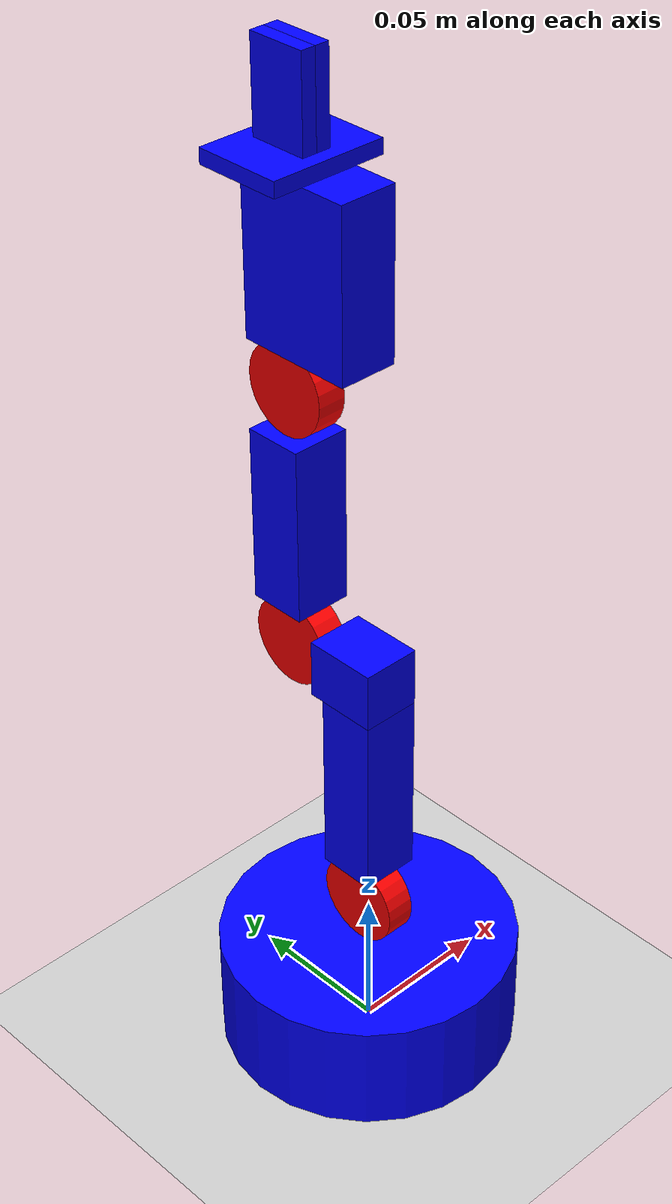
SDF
<?xml version="1.0" ?>
<sdf version="1.10">
    <world name="car_world">
        <physics name="1ms" type="ignored">
            <max_step_size>0.001</max_step_size>
            <real_time_factor>1.0</real_time_factor>
        </physics>
        <plugin
            filename="gz-sim-physics-system"
            name="gz::sim::systems::Physics">
        </plugin>
        <plugin
            filename="gz-sim-user-commands-system"
            name="gz::sim::systems::UserCommands">
        </plugin>
        <plugin
            filename="gz-sim-scene-broadcaster-system"
            name="gz::sim::systems::SceneBroadcaster">
        </plugin>

        <light type="directional" name="sun">
            <cast_shadows>true</cast_shadows>
            <pose>0 0 10 0 0 0</pose>
            <diffuse>0.8 0.8 0.8 1</diffuse>
            <specular>0.2 0.2 0.2 1</specular>
            <attenuation>
                <range>1000</range>
                <constant>0.9</constant>
                <linear>0.01</linear>
                <quadratic>0.001</quadratic>
            </attenuation>
            <direction>-0.5 0.1 -0.9</direction>
        </light>
        <model name="ground_plane">
            <static>true</static>
            <link name="link">
                <collision name="collision">
                <geometry>
                    <plane>
                    <normal>0 0 1</normal>
                    </plane>
                </geometry>
                </collision>
                <visual name="visual">
                <geometry>
                    <plane>
                    <normal>0 0 1</normal>
                    <size>100 100</size>
                    </plane>
                </geometry>
                <material>
                    <ambient>0.8 0.8 0.8 1</ambient>
                    <diffuse>0.8 0.8 0.8 1</diffuse>
                    <specular>0.8 0.8 0.8 1</specular>
                </material>
                </visual>
            </link>
        </model>
	<!--MODEL DESCRIPTION-->
	<model name='arm' canonical_link='plate'>
		<pose relative_to='world'>0 0 0 0 0 0</pose>
		<link name='plate'>
        		<pose relative_to='__model__'>0 0 0.020 0 0 0</pose>
			<visual name='visual'>
				<geometry>
				    <cylinder>
					<radius>0.05</radius>
					<length>0.04</length>
				    </cylinder>
				</geometry>
				<!--let's add color to our link-->
				<material>
				    <ambient>0.0 0.0 1.0 1</ambient>
				    <diffuse>0.0 0.0 1.0 1</diffuse>
				    <specular>0.0 0.0 1.0 1</specular>
				</material>
			</visual>
			<collision name='collision'>
			    <geometry>
				    <cylinder>
					<radius>0.05</radius>
					<length>0.04</length>
				    </cylinder>
			    </geometry>
			</collision>
		</link>

		<link name='plate_joint_1'>
        		<pose relative_to='plate'>0 0 0.035 1.570796 0 1.570796</pose>
			<visual name='visual'>
				<geometry>
				    <cylinder>
					<radius>0.015</radius>
					<length>0.01</length>
				    </cylinder>
				</geometry>
				<!--let's add color to our link-->
				<material>
				    <ambient>1.0 0.0 0.0 1</ambient>
				    <diffuse>1.0 0.0 0.0 1</diffuse>
				    <specular>1.0 0.0 0.0 1</specular>
				</material>
			</visual>
			<collision name='collision'>
			    <geometry>
				    <cylinder>
					<radius>0.015</radius>
					<length>0.01</length>
				    </cylinder>
			    </geometry>
			</collision>
		</link>

		<link name='bar1'>
        		<pose relative_to='joint1'>0 0.0475 0 0 0 0</pose>
			<visual name='visual'>
				<geometry>
				    <box>
					  <size>0.02 0.065 0.02</size>
				    </box>
				</geometry>
				<!--let's add color to our link-->
				<material>
				    <ambient>0.0 0.0 1.0 1</ambient>
				    <diffuse>0.0 0.0 1.0 1</diffuse>
				    <specular>0.0 0.0 1.0 1</specular>
				</material>
			</visual>
			<collision name='collision'>
			    <geometry>
				    <box>
					  <size>0.02 0.065 0.020</size>
				    </box>
			    </geometry>
			</collision>
		</link>
		<link name='bar1a'>
        		<pose relative_to='bar1'>0.0025 0.0425 0 0 0 0</pose>
			<visual name='visual'>
				<geometry>
				    <box>
					  <size>0.025 0.02 0.020</size>
				    </box>
				</geometry>
				<!--let's add color to our link-->
				<material>
				    <ambient>0.0 0.0 1.0 1</ambient>
				    <diffuse>0.0 0.0 1.0 1</diffuse>
				    <specular>0.0 0.0 1.0 1</specular>
				</material>
			</visual>
			<collision name='collision'>
			    <geometry>
				    <box>
					  <size>0.025 0.02 0.02</size>
				    </box>
			    </geometry>
			</collision>
		</link>

		<link name='plate_joint_2'>
        		<pose relative_to='bar1a'>0.0275 0 0 0 0 0</pose>
			<visual name='visual'>
				<geometry>
				    <cylinder>
					<radius>0.015</radius>
					<length>0.01</length>
				    </cylinder>
				</geometry>
				<!--let's add color to our link-->
				<material>
				    <ambient>1.0 0.0 0.0 1</ambient>
				    <diffuse>1.0 0.0 0.0 1</diffuse>
				    <specular>1.0 0.0 0.0 1</specular>
				</material>
			</visual>
			<collision name='collision'>
			    <geometry>
				    <cylinder>
					<radius>0.015</radius>
					<length>0.01</length>
				    </cylinder>
			    </geometry>
			</collision>
		</link>

		<link name='bar2'>
        		<pose relative_to='plate_joint_2'>0 0.045 0 0 0 0</pose>
			<visual name='visual'>
				<geometry>
				    <box>
					<size>0.02 0.060 0.02</size>
				    </box>
				</geometry>
				<!--let's add color to our link-->
				<material>
				    <ambient>0.0 0.0 1.0 1</ambient>
				    <diffuse>0.0 0.0 1.0 1</diffuse>
				    <specular>0.0 0.0 1.0 1</specular>
				</material>
			</visual>
			<collision name='collision'>
			    <geometry>
				    <box>
					<size>0.02 0.060 0.02</size>
				    </box>
			    </geometry>
			</collision>
		</link>

		<link name='plate_joint_3'>
        		<pose relative_to='bar2'>0 0.045 0 0 0 0</pose>
			<visual name='visual'>
				<geometry>
				    <cylinder>
					<radius>0.015</radius>
					<length>0.01</length>
				    </cylinder>
				</geometry>
				<!--let's add color to our link-->
				<material>
				    <ambient>1.0 0.0 0.0 1</ambient>
				    <diffuse>1.0 0.0 0.0 1</diffuse>
				    <specular>1.0 0.0 0.0 1</specular>
				</material>
			</visual>
			<collision name='collision'>
			    <geometry>
				    <cylinder>
					<radius>0.015</radius>
					<length>0.01</length>
				    </cylinder>
			    </geometry>
			</collision>
		</link>

		<link name='bar3'>
        		<pose relative_to='plate_joint_3'>-0.01 0.0425 0 0 0 0</pose>
			<visual name='visual'>
				<geometry>
				    <box>
					<size>0.04 0.055 0.02</size>
				    </box>
				</geometry>
				<!--let's add color to our link-->
				<material>
				    <ambient>0.0 0.0 1.0 1</ambient>
				    <diffuse>0.0 0.0 1.0 1</diffuse>
				    <specular>0.0 0.0 1.0 1</specular>
				</material>
			</visual>
			<collision name='collision'>
			    <geometry>
				    <box>
					<size>0.04 0.055 0.02</size>
				    </box>
			    </geometry>
			</collision>
		</link>

		<link name='bar3a'>
        		<pose relative_to='bar3'>0.01 0.03 0 0 0 0</pose>
			<visual name='visual'>
				<geometry>
				    <box>
					<size>0.03 0.005 0.04</size>
				    </box>
				</geometry>
				<!--let's add color to our link-->
				<material>
				    <ambient>0.0 0.0 1.0 1</ambient>
				    <diffuse>0.0 0.0 1.0 1</diffuse>
				    <specular>0.0 0.0 1.0 1</specular>
				</material>
			</visual>
			<collision name='collision'>
			    <geometry>
				    <box>
					<size>0.03 0.005 0.04</size>
				    </box>
			    </geometry>
			</collision>
		</link>

		<link name='bar4a'>
        		<pose relative_to='bar3a'>0 0.0175 -0.0025 0 0 0</pose>
			<visual name='visual'>
				<geometry>
				    <box>
					<size>0.02 0.03 0.005</size>
				    </box>
				</geometry>
				<!--let's add color to our link-->
				<material>
				    <ambient>0.0 0.0 1.0 1</ambient>
				    <diffuse>0.0 0.0 1.0 1</diffuse>
				    <specular>0.0 0.0 1.0 1</specular>
				</material>
			</visual>
			<collision name='collision'>
			    <geometry>
				    <box>
					<size>0.02 0.03 0.005</size>
				    </box>
			    </geometry>
			</collision>
		</link>

		<link name='bar4b'>
        		<pose relative_to='bar3a'>0 0.0175 0.0025 0 0 0</pose>
			<visual name='visual'>
				<geometry>
				    <box>
					<size>0.02 0.03 0.005</size>
				    </box>
				</geometry>
				<!--let's add color to our link-->
				<material>
				    <ambient>0.0 0.0 1.0 1</ambient>
				    <diffuse>0.0 0.0 1.0 1</diffuse>
				    <specular>0.0 0.0 1.0 1</specular>
				</material>
			</visual>
			<collision name='collision'>
			    <geometry>
				    <box>
					<size>0.02 0.03 0.005</size>
				    </box>
			    </geometry>
			</collision>
		</link>

            <!--left wheel joint-->
            <joint name='joint0' type='revolute'>
                <pose relative_to='plate'/>
                <parent>plate</parent>
                <child>plate_joint_1</child>
                <axis>
                    <xyz expressed_in='__model__'>0 0 1</xyz>
                    <limit>
                        <lower>-1.79769e+308</lower>    <!--negative infinity-->
                        <upper>1.79769e+308</upper>     <!--positive infinity-->
                    </limit>
                </axis>
            </joint>

            <joint name='joint1' type='revolute'>
                <pose relative_to='plate_joint_1'/>
                <parent>plate_joint_1</parent>
                <child>bar1</child>
                <axis>
                    <xyz expressed_in='__model__'>0 1 0</xyz>
                    <limit>
                        <lower>-1.79769e+308</lower>    <!--negative infinity-->
                        <upper>1.79769e+308</upper>     <!--positive infinity-->
                    </limit>
                </axis>
            </joint>

            <joint name='joint2' type='revolute'>
                <pose relative_to='plate_joint_2'/>
                <parent>bar1a</parent>
                <child>bar2</child>
                <axis>
                    <xyz expressed_in='__model__'>0 1 0</xyz>
                    <limit>
                        <lower>-1.79769e+308</lower>    <!--negative infinity-->
                        <upper>1.79769e+308</upper>     <!--positive infinity-->
                    </limit>
                </axis>
            </joint>

            <joint name='joint3' type='revolute'>
                <pose relative_to='plate_joint_3'/>
                <parent>bar2</parent>
                <child>bar3</child>
                <axis>
                    <xyz expressed_in='__model__'>0 1 0</xyz>
                    <limit>
                        <lower>-1.79769e+308</lower>    <!--negative infinity-->
                        <upper>1.79769e+308</upper>     <!--positive infinity-->
                    </limit>
                </axis>
            </joint>

            <joint name='joint4a' type='prismatic'>
                <pose relative_to='bar3a'/>
                <parent>bar3a</parent>
                <child>bar4a</child>
                <axis>
                    <xyz expressed_in='__model__'>0 0 1</xyz>
                    <limit>
                        <lower>-0.015</lower>    <!--negative infinity-->
                        <upper>0</upper>     <!--positive infinity-->
                    </limit>
                </axis>
            </joint>

            <joint name='joint4b' type='prismatic'>
                <pose relative_to='bar3a'/>
                <parent>bar3a</parent>
                <child>bar4b</child>
                <axis>
                    <xyz expressed_in='__model__'>0 0 1</xyz>
                    <limit>
                        <lower>0</lower>    <!--negative infinity-->
                        <upper>0.015</upper>     <!--positive infinity-->
                    </limit>
                </axis>
            </joint>

	</model>
    </world>
</sdf>
